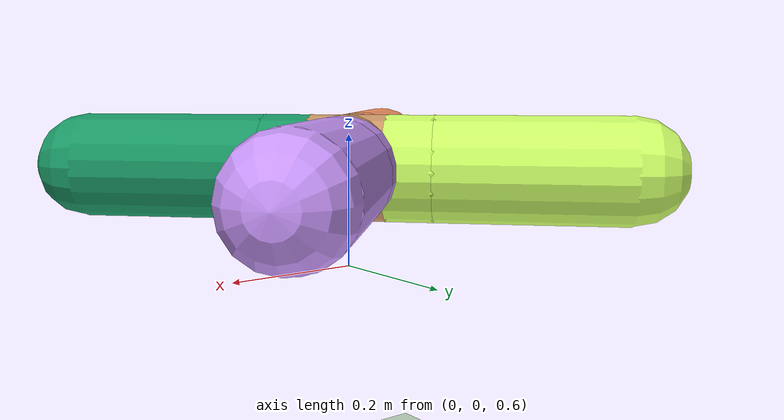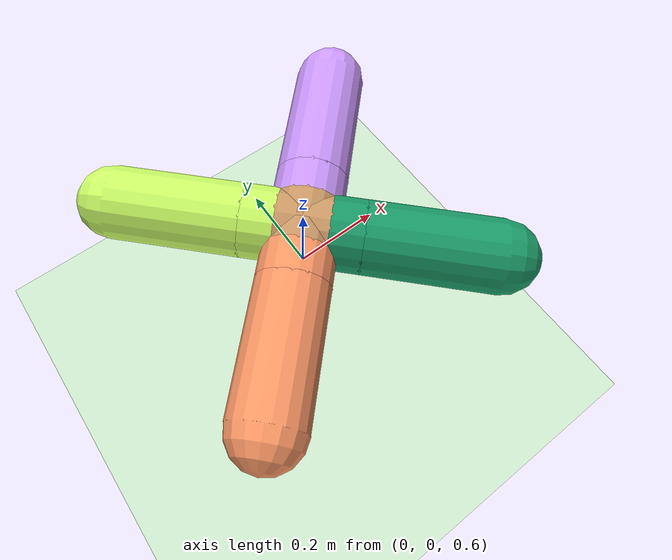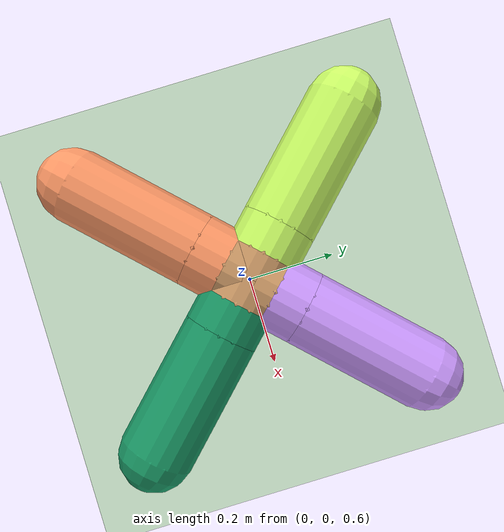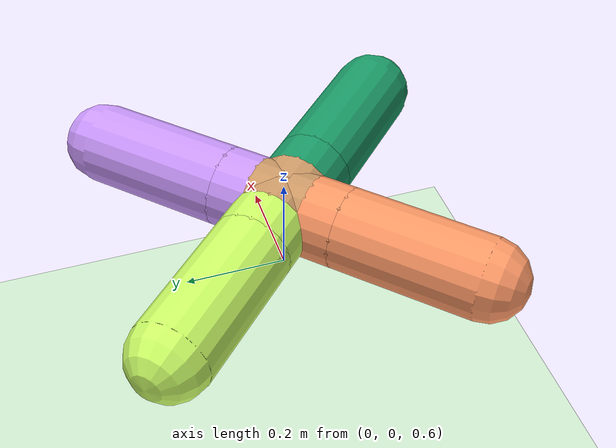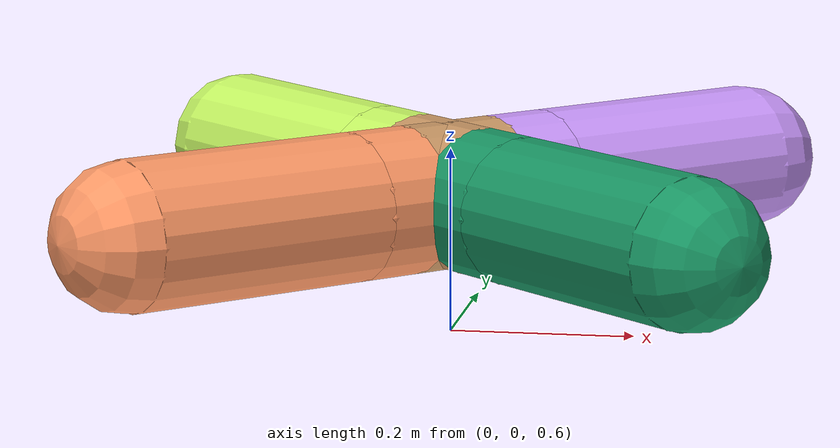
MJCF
<?xml version="1.0" ?><mujoco model="ant">
  <compiler angle="degree" coordinate="local" inertiafromgeom="true"/>
  <option integrator="RK4" timestep="0.01"/>
  <custom>
    <numeric data="0.0 0.0 0.55 1.0 0.0 0.0 0.0 0.0 1.0 0.0 -1.0 0.0 -1.0 0.0 1.0" name="init_qpos"/>
  </custom>
  <default>
    <joint armature="1" damping="1" limited="true"/>
    <geom conaffinity="0" condim="3" density="5.0" friction="1 0.5 0.5" margin="0.01" rgba="0.8 0.6 0.4 1"/>
  </default>
  <asset>
    <texture builtin="gradient" height="100" rgb1="1 1 1" rgb2="0 0 0" type="skybox" width="100"/>
    <texture builtin="flat" height="1278" mark="cross" markrgb="1 1 1" name="texgeom" random="0.01" rgb1="0.8 0.6 0.4" rgb2="0.8 0.6 0.4" type="cube" width="127"/>
    <texture builtin="checker" height="100" name="texplane" rgb1="0 0 0" rgb2="0.8 0.8 0.8" type="2d" width="100"/>
    <material name="MatPlane" reflectance="0.5" shininess="1" specular="1" texrepeat="60 60" texture="texplane"/>
    <material name="geom" texture="texgeom" texuniform="true"/>
  </asset>
  <worldbody>
    <light cutoff="100" diffuse="1 1 1" dir="-0 0 -1.3" directional="true" exponent="1" pos="0 0 1.3" specular=".1 .1 .1"/>
    <geom conaffinity="1" condim="3" material="MatPlane" name="floor" pos="0 0 0" rgba="0.8 0.9 0.8 1" size="40 40 40" type="plane"/>
    <body name="torso" pos="0 0 0.75">
      <camera mode="trackcom" name="track" pos="0 -3 0.3" xyaxes="1 0 0 0 0 1"/>
      <geom name="torso_geom" pos="0 0 0" size="0.05" type="sphere"/> <!-- CHANGE SPHERE SIZE OF TORSO!!!!!!!!!!!!!!!!!!!!!!!!!!!!!!!!!!!!!!!!!!!!!!!!!!!!!! 1 -->
      <joint armature="0" damping="0" limited="false" margin="0.01" name="root" pos="0 0 0" type="free"/>
      <body name="front_left_leg" pos="0 0 0"> <!-- FRONT LEFT LEG -->
        <geom fromto="0.0 0.0 0.0 0.04 0.04 0.0" name="aux_1_geom" size="0.08" type="capsule"/> <!-- CHANGE LEG PHYSICAL STARTING POS !!!!!!!!!!!!!!!!!!!!!!!! 2 -->
        <body name="aux_1" pos="0.04 0.04 0"> <!-- CHANGE LEG MOVEMENT AXIS !!!!!!!!!!!!!!!!!!!!!!!!!!!!!!!!!!!!!!!!!!!!!!!!!!!!!!!!!!!!!!!!!!!!!!!!!!!!!!!!!! 3 -->
          <joint axis="0 0 1" name="hip_1" pos="0.0 0.0 0.0" range="-30 30" type="hinge"/>
          <geom fromto="0.0 0.0 0.0 0.05 0.05 0.0" name="left_leg_geom" rgba=".8 .6 1.4 1" size="0.08" type="capsule"/>
          <body pos="0.05 0.05 0">
            <joint axis="-1 1 0" name="ankle_1" pos="0.0 0.0 0.0" range="30 70" type="hinge"/>
            <!-- 0.4s changes length of ankle of front left_leg (front pointed to the right) (lower section of appendage) Not sure which 0.4 is changing it-->
            <geom fromto="0.0 0.0 0.0 0.2 0.2 0.0" name="left_ankle_geom" rgba=".8 .6 1.4 1" size="0.08" type="capsule"/>
          </body>
        </body>
      </body>
      <body name="front_right_leg" pos="0 0 0"> <!-- BACK LEFT LEG -->
        <geom fromto="0.0 0.0 0.0 -0.04 0.04 0.0" name="aux_2_geom" size="0.08" type="capsule"/> <!-- CHANGE LEG PHYSICAL STARTING POS !!!!!!!!!!!!!!!!!!!!!!! 4 -->
        <body name="aux_2" pos="-0.04 0.04 0"> <!-- CHANGE LEG MOVEMENT AXIS !!!!!!!!!!!!!!!!!!!!!!!!!!!!!!!!!!!!!!!!!!!!!!!!!!!!!!!!!!!!!!!!!!!!!!!!!!!!!!!!! 5 -->
          <joint axis="0 0 1" name="hip_2" pos="0.0 0.0 0.0" range="-30 30" type="hinge"/>
          <geom fromto="0.0 0.0 0.0 -0.05 0.05 0.0" name="right_leg_geom" rgba="0.8 1.6 0.4 1" size="0.08" type="capsule"/>
          <body pos="-0.05 0.05 0">
            <joint axis="1 1 0" name="ankle_2" pos="0.0 0.0 0.0" range="-70 -30" type="hinge"/>
            <!-- 0.4s changes length of ankle of back left_leg (front pointed to the right) (lower section of appendage) Not sure which 0.4 is changing it-->
            <geom fromto="0.0 0.0 0.0 -0.2 0.2 0.0" name="right_ankle_geom" rgba="0.8 1.6 0.4 1" size="0.08" type="capsule"/>
          </body>
        </body>
      </body>
      <body name="back_leg" pos="0 0 0"> <!-- BACK RIGHT LEG -->
        <geom fromto="0.0 0.0 0.0 -0.04 -0.04 0.0" name="aux_3_geom" size="0.08" type="capsule"/> <!-- CHANGE LEG PHYSICAL STARTING POS !!!!!!!!!!!!!!!!!!!!!! 6 -->
        <body name="aux_3" pos="-0.04 -0.04 0"> <!-- CHANGE LEG MOVEMENT AXIS !!!!!!!!!!!!!!!!!!!!!!!!!!!!!!!!!!!!!!!!!!!!!!!!!!!!!!!!!!!!!!!!!!!!!!!!!!!!!!!! 7 -->
          <joint axis="0 0 1" name="hip_3" pos="0.0 0.0 0.0" range="-30 30" type="hinge"/>
          <geom fromto="0.0 0.0 0.0 -0.05 -0.05 0.0" name="back_leg_geom" rgba="1.8 0.6 0.4 1" size="0.08" type="capsule"/>
          <body pos="-0.05 -0.05 0">
            <joint axis="-1 1 0" name="ankle_3" pos="0.0 0.0 0.0" range="-70 -30" type="hinge"/>
            <!-- 0.4s changes length of ankle of back right_leg (front pointed to the right) (lower section of appendage) Not sure which 0.4 is changing it-->
            <geom fromto="0.0 0.0 0.0 -0.2 -0.2 0.0" name="third_ankle_geom" rgba="1.8 0.6 0.4 1" size="0.08" type="capsule"/>
          </body>
        </body>
      </body>
      <body name="right_back_leg" pos="0 0 0"> <!-- FRONT RIGHT LEG -->
        <geom fromto="0.0 0.0 0.0 0.04 -0.04 0.0" name="aux_4_geom" size="0.08" type="capsule"/> <!-- CHANGE LEG PHYSICAL STARTING POS !!!!!!!!!!!!!!!!!!!!!!! 8 -->
        <body name="aux_4" pos="0.04 -0.04 0"> <!-- CHANGE LEG MOVEMENT AXIS !!!!!!!!!!!!!!!!!!!!!!!!!!!!!!!!!!!!!!!!!!!!!!!!!!!!!!!!!!!!!!!!!!!!!!!!!!!!!!!!! 9 -->
          <joint axis="0 0 1" name="hip_4" pos="0.0 0.0 0.0" range="-30 30" type="hinge"/>
          <geom fromto="0.0 0.0 0.0 0.05 -0.05 0.0" name="rightback_leg_geom" rgba="0.1 0.6 0.4 1" size="0.08" type="capsule"/>
          <body pos="0.05 -0.05 0">
            <joint axis="1 1 0" name="ankle_4" pos="0.0 0.0 0.0" range="30 70" type="hinge"/>
            <!-- 0.4s changes length of ankle of front right_leg (front pointed to the right) (lower section of appendage) Not sure which 0.4 is changing it-->
            <geom fromto="0.0 0.0 0.0 0.2 -0.2 0.0" name="fourth_ankle_geom" rgba="0.1 0.6 0.4 1" size="0.08" type="capsule"/>
          </body>
        </body>
      </body>
    </body>
  </worldbody>
  <actuator>
    <motor ctrllimited="true" ctrlrange="-1.0 1.0" gear="150" joint="hip_4"/>
    <motor ctrllimited="true" ctrlrange="-1.0 1.0" gear="150" joint="ankle_4"/>
    <motor ctrllimited="true" ctrlrange="-1.0 1.0" gear="150" joint="hip_1"/>
    <motor ctrllimited="true" ctrlrange="-1.0 1.0" gear="150" joint="ankle_1"/>
    <motor ctrllimited="true" ctrlrange="-1.0 1.0" gear="150" joint="hip_2"/>
    <motor ctrllimited="true" ctrlrange="-1.0 1.0" gear="150" joint="ankle_2"/>
    <motor ctrllimited="true" ctrlrange="-1.0 1.0" gear="150" joint="hip_3"/>
    <motor ctrllimited="true" ctrlrange="-1.0 1.0" gear="150" joint="ankle_3"/>
  </actuator>
</mujoco>
